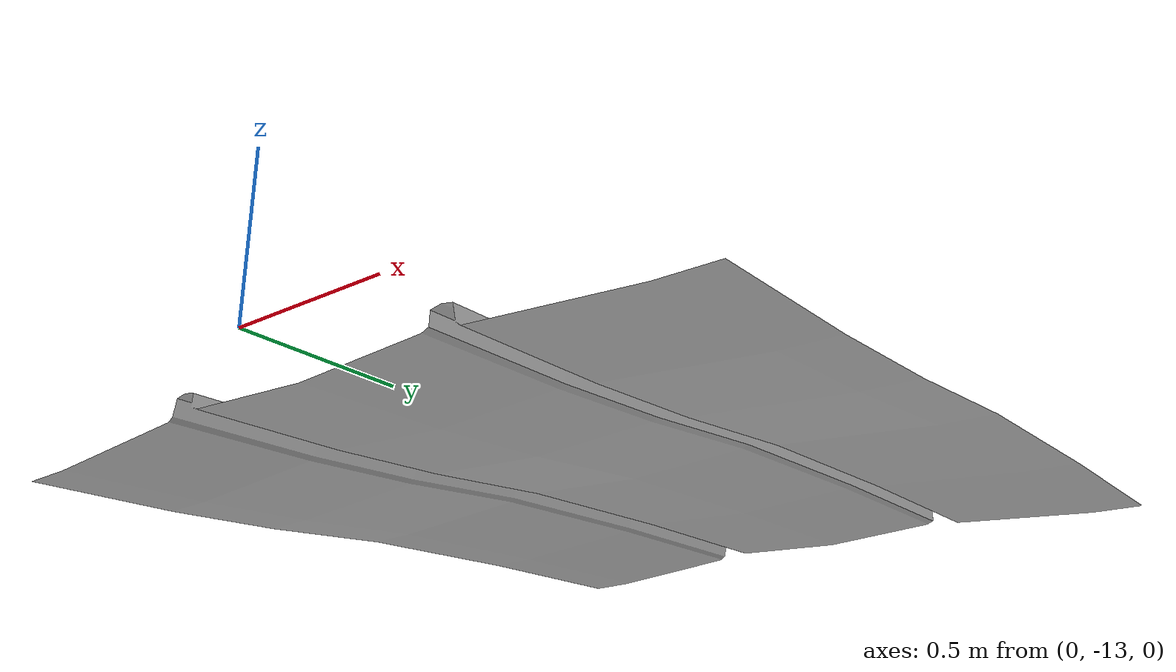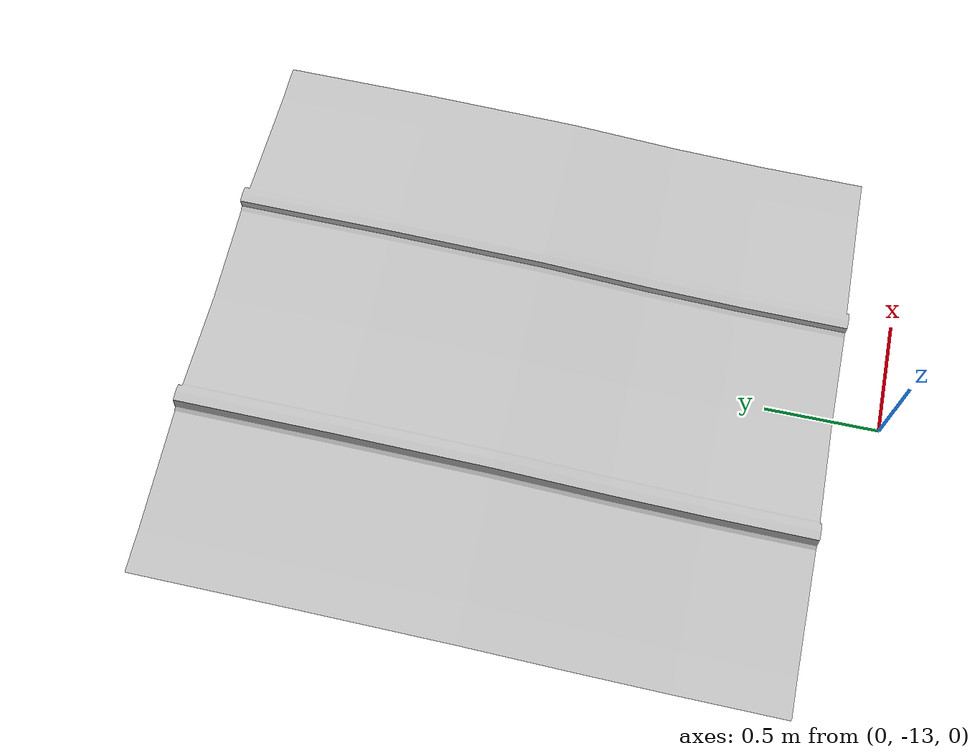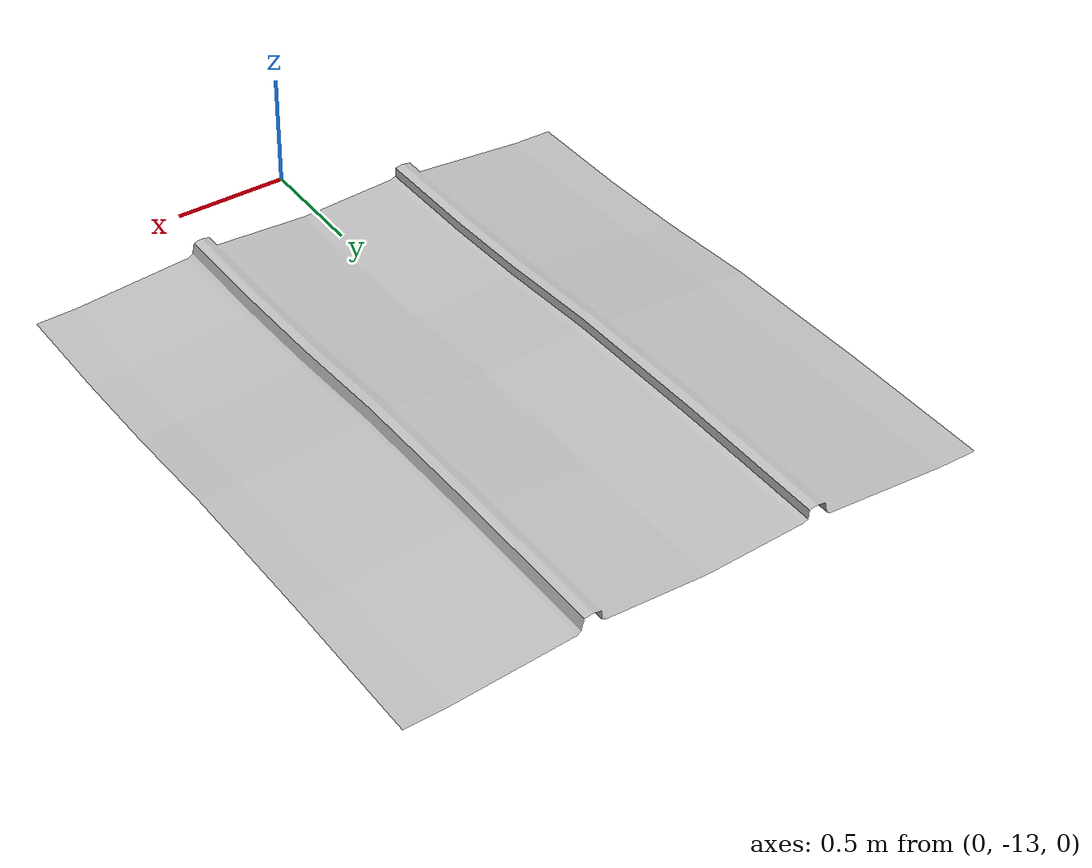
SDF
<?xml version='1.0' ?>
<sdf version='1.6'>
  <model name='Rail Tunnel End'>
    <pose>0 0 0 0 0 0</pose>
    <static>true</static>
    <link name="link">
      <collision name="collision">
        <geometry>
          <mesh>
            <uri>model://Rail Tunnel End/meshes/Rail Tunnel End.dae</uri>
         </mesh>
        </geometry>
      </collision>
      <visual name="visual">
        <geometry>
          <mesh>
            <uri>model://Rail Tunnel End/meshes/Rail Tunnel End.dae</uri>
         </mesh>
        </geometry>
      </visual>
    </link>
  </model>
 </sdf>
